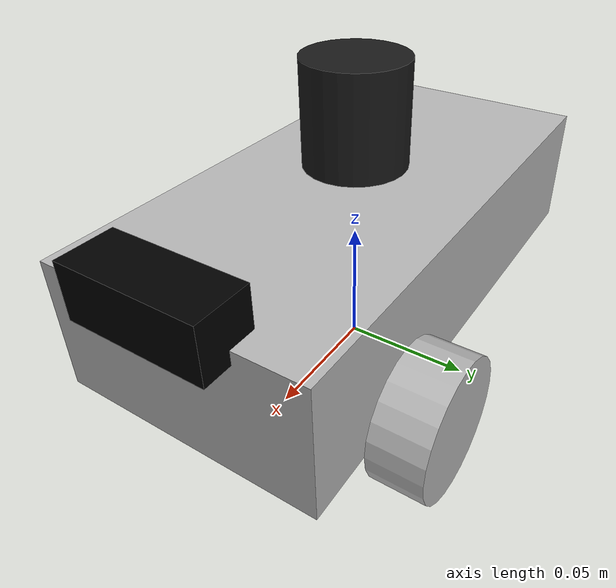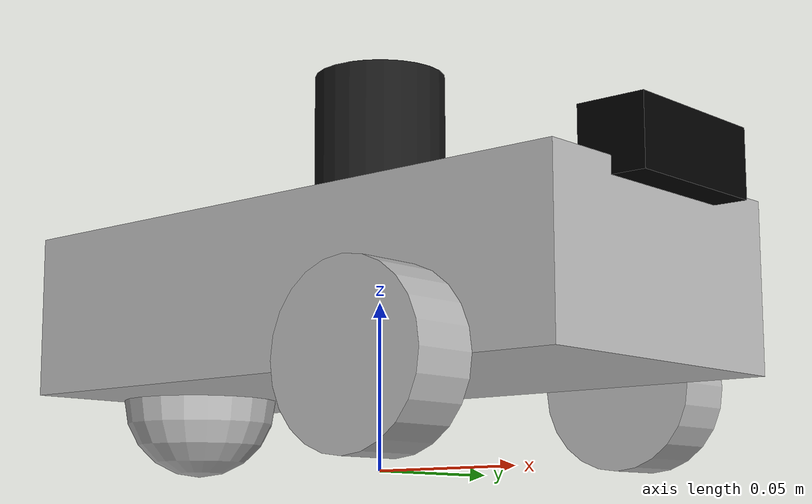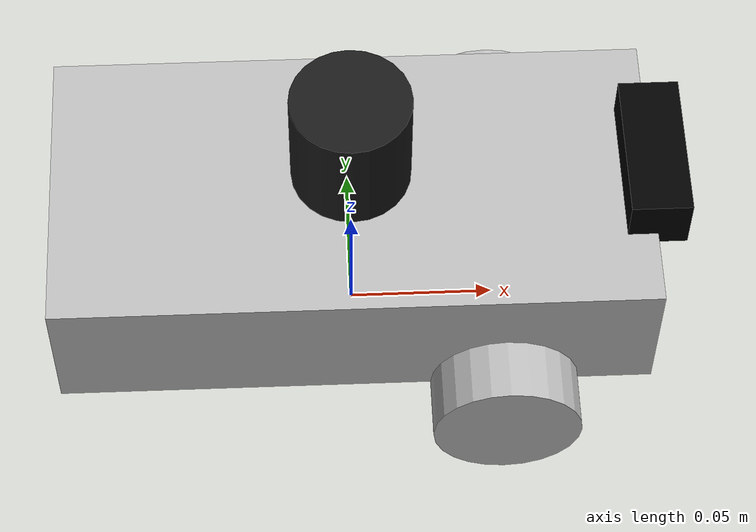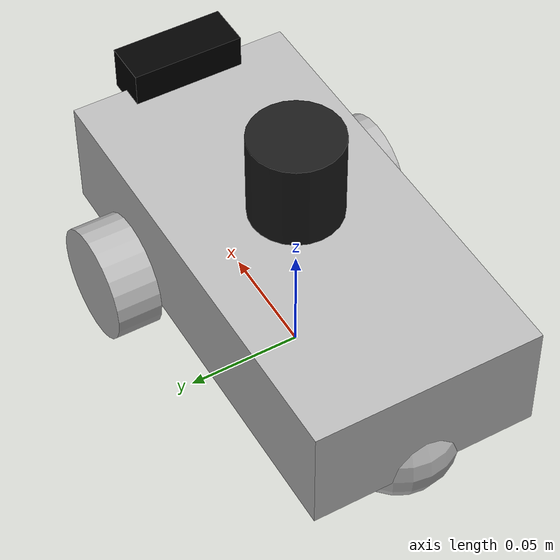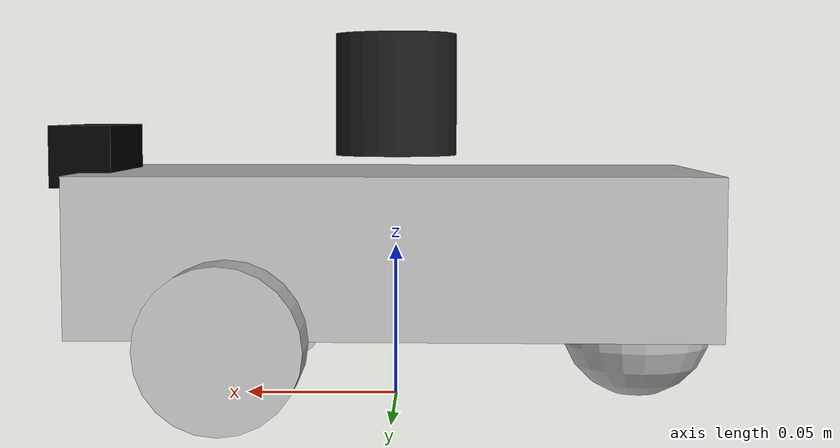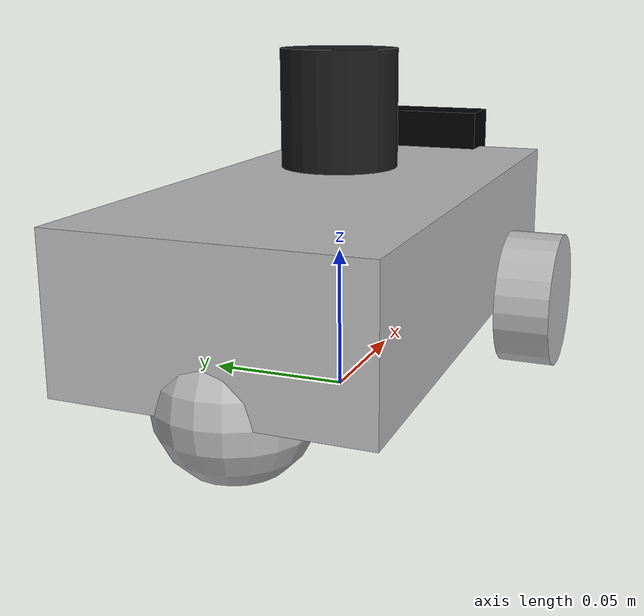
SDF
<?xml version="1.0" ?>
<sdf version="1.6">
  <model name="diffbot">
    <static>false</static>

    <link name="base_link">
      <pose>0 0 0.05 0 0 0</pose>
      <inertial>
        <mass>3.0</mass>
        <inertia>
          <ixx>0.01</ixx><iyy>0.01</iyy><izz>0.01</izz>
        </inertia>
      </inertial>
      <collision name="base_collision">
        <geometry><box><size>0.2 0.1 0.05</size></box></geometry>
      </collision>
      <visual name="base_visual">
        <geometry><box><size>0.2 0.1 0.05</size></box></geometry>
      </visual>
    </link>

    <link name="left_wheel_link">
      <pose>0.05 0.06 0.025 0 0 0</pose>
      <inertial>
        <mass>0.2</mass>
        <inertia><ixx>0.0001</ixx><iyy>0.0001</iyy><izz>0.0001</izz></inertia>
      </inertial>
      <collision name="left_wheel_collision">
        <pose>0 0 0 1.5708 0 0</pose>
        <geometry><cylinder><radius>0.025</radius><length>0.02</length></cylinder></geometry>
        <surface>
          <friction>
            <ode><mu>1.5</mu><mu2>1.5</mu2></ode>
          </friction>
        </surface>
      </collision>
      <visual name="left_wheel_visual">
        <pose>0 0 0 1.5708 0 0</pose>
        <geometry><cylinder><radius>0.025</radius><length>0.02</length></cylinder></geometry>
      </visual>
    </link>

    <joint name="left_wheel_joint" type="revolute">
      <parent>base_link</parent>
      <child>left_wheel_link</child>
      <axis>
        <xyz>0 1 0</xyz>
        <limit><effort>10</effort><velocity>10</velocity></limit>
        <dynamics><damping>0.01</damping><friction>0.01</friction></dynamics>
      </axis>
    </joint>

    <link name="right_wheel_link">
      <pose>0.05 -0.06 0.025 0 0 0</pose>
      <inertial>
        <mass>0.2</mass>
        <inertia><ixx>0.0001</ixx><iyy>0.0001</iyy><izz>0.0001</izz></inertia>
      </inertial>
      <collision name="right_wheel_collision">
        <pose>0 0 0 1.5708 0 0</pose>
        <geometry><cylinder><radius>0.025</radius><length>0.02</length></cylinder></geometry>
        <surface>
          <friction>
            <ode><mu>1.5</mu><mu2>1.5</mu2></ode>
          </friction>
        </surface>
      </collision>
      <visual name="right_wheel_visual">
        <pose>0 0 0 1.5708 0 0</pose>
        <geometry><cylinder><radius>0.025</radius><length>0.02</length></cylinder></geometry>
      </visual>
    </link>

    <joint name="right_wheel_joint" type="revolute">
      <parent>base_link</parent>
      <child>right_wheel_link</child>
      <axis>
        <xyz>0 1 0</xyz>
        <limit><effort>10</effort><velocity>10</velocity></limit>
        <dynamics><damping>0.01</damping><friction>0.01</friction></dynamics>
      </axis>
    </joint>

    <link name="caster_link">
      <pose>-0.08 0 0.025 0 0 0</pose>
      <inertial>
        <mass>0.1</mass>
        <inertia><ixx>0.0001</ixx><iyy>0.0001</iyy><izz>0.0001</izz></inertia>
      </inertial>
      <collision name="caster_collision">
        <geometry><sphere><radius>0.025</radius></sphere></geometry>
        <surface><friction><ode><mu>0.0</mu><mu2>0.0</mu2></ode></friction></surface>
      </collision>
      <visual name="caster_visual">
        <geometry><sphere><radius>0.025</radius></sphere></geometry>
      </visual>
    </link>

    <joint name="caster_joint" type="fixed">
      <parent>base_link</parent>
      <child>caster_link</child>
    </joint>

    <link name="camera_link">
      <pose>0.1 0 0.08 0 0 0</pose>
      <visual name="camera_visual">
        <geometry><box><size>0.02 0.05 0.02</size></box></geometry>
        <material><ambient>0 0 0 1</ambient><diffuse>0 0 0 1</diffuse></material>
      </visual>
      <sensor name="camera" type="camera">
        <update_rate>30.0</update_rate>
        <visualize>true</visualize>
        <camera name="head">
          <horizontal_fov>1.39626</horizontal_fov>
          <image><width>800</width><height>600</height><format>R8G8B8</format></image>
          <clip><near>0.02</near><far>300</far></clip>
        </camera>
        <plugin name="camera_controller" filename="libgazebo_ros_camera.so">
          <ros><remapping>image_raw:=camera/image_raw</remapping></ros>
          <frame_name>camera_link</frame_name>
        </plugin>
      </sensor>
    </link>

    <joint name="camera_joint" type="fixed">
      <parent>base_link</parent>
      <child>camera_link</child>
    </joint>

    <link name="base_scan">
      <pose>0 0 0.1 0 0 0</pose>
      <visual name="lidar_visual">
        <geometry><cylinder><radius>0.02</radius><length>0.04</length></cylinder></geometry>
        <material><ambient>0.1 0.1 0.1 1</ambient><diffuse>0.1 0.1 0.1 1</diffuse></material>
      </visual>
      <sensor name="lidar" type="ray">
        <always_on>true</always_on>
        <update_rate>10.0</update_rate>
        <visualize>true</visualize>
        <ray>
          <scan><horizontal><samples>360</samples><min_angle>-3.14159</min_angle><max_angle>3.14159</max_angle></horizontal></scan>
          <range><min>0.12</min><max>10.0</max></range> </ray>
        <plugin name="lidar_controller" filename="libgazebo_ros_ray_sensor.so">
          <ros><remapping>~/out:=scan</remapping></ros>
          <output_type>sensor_msgs/LaserScan</output_type>
          <frame_name>base_scan</frame_name>
        </plugin>
      </sensor>
    </link>

    <joint name="lidar_joint" type="fixed">
      <parent>base_link</parent>
      <child>base_scan</child>
    </joint>

    <plugin name="diff_drive" filename="libgazebo_ros_diff_drive.so">
      <left_joint>left_wheel_joint</left_joint>
      <right_joint>right_wheel_joint</right_joint>
      <wheel_separation>0.12</wheel_separation>
      <wheel_diameter>0.05</wheel_diameter>
      <max_wheel_torque>5</max_wheel_torque>
      <max_wheel_acceleration>1.0</max_wheel_acceleration>
      <command_topic>cmd_vel</command_topic>
      <odometry_topic>odom</odometry_topic>
      <odometry_frame>odom</odometry_frame>
      <robot_base_frame>base_link</robot_base_frame>
      <publish_odom>true</publish_odom>
      <publish_odom_tf>true</publish_odom_tf>
      <publish_wheel_tf>true</publish_wheel_tf>
    </plugin>
  </model>
</sdf>
